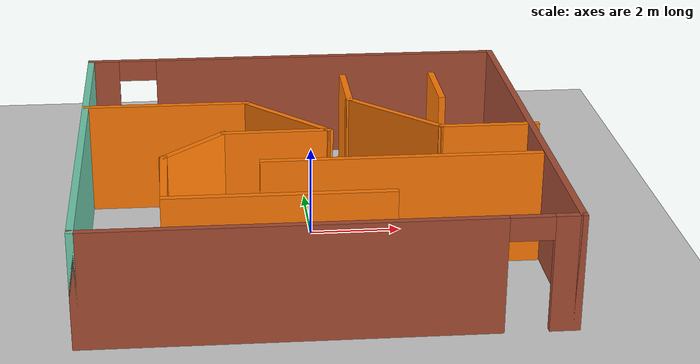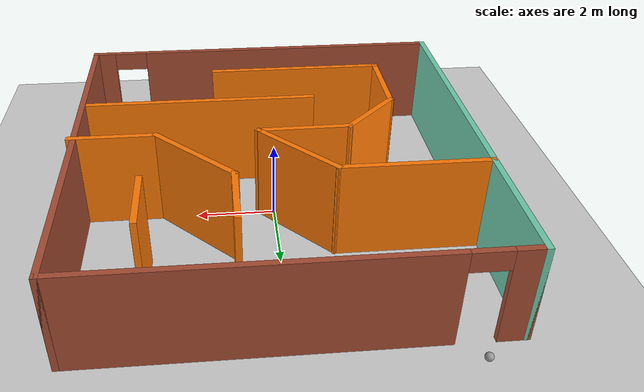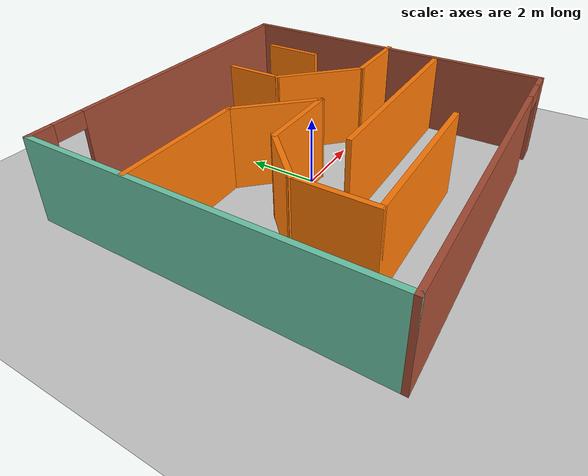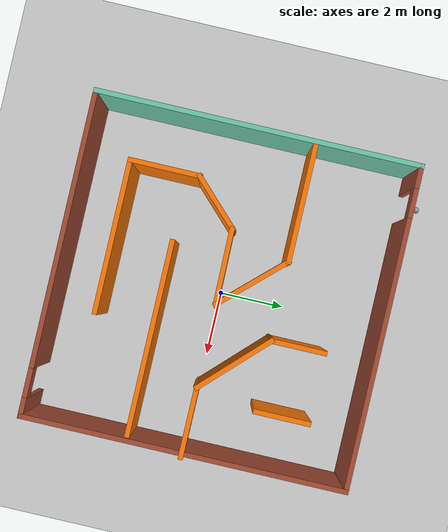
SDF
<sdf version="1.6">
 <world name="default">
  <plugin name="greetUser" filename="libgreetUser.so"/>
  <light name="sun" type="directional">
   <pose>0 0 10 0 -0 0</pose>
   <diffuse>0.8 0.8 0.8 1</diffuse>
   <specular>0.2 0.2 0.2 1</specular>
   <attenuation>
    <range>1000</range>
    <constant>0.9</constant>
    <linear>0.01</linear>
    <quadratic>0.001</quadratic>
   </attenuation>
   <direction>-0.5 0.1 -0.9</direction>
  </light>
  <model name="ground_plane">
   <static>1</static>
   <link name="link">
    <collision name="collision">
     <geometry><plane><normal>0 0 1</normal><size>100 100</size></plane></geometry>
     <surface>
      <contact><collide_bitmask>65535</collide_bitmask></contact>
      <friction><ode><mu>100</mu><mu2>50</mu2></ode></friction>
     </surface>
    </collision>
    <visual name="visual">
     <cast_shadows>0</cast_shadows>
     <geometry><plane><normal>0 0 1</normal><size>100 100</size></plane></geometry>
     <material>
      <script><uri>file://media/materials/scripts/gazebo.material</uri><name>Gazebo/Grey</name></script>
     </material>
    </visual>
   </link>
  </model>
  <gravity>0 0 -9.8</gravity>
  <magnetic_field>6e-06 2.3e-05 -4.2e-05</magnetic_field>
  <atmosphere type="adiabatic"/>
  <physics name="default_physics" default="0" type="ode">
   <max_step_size>0.001</max_step_size>
   <real_time_factor>1</real_time_factor>
   <real_time_update_rate>1000</real_time_update_rate>
  </physics>
  <scene><ambient>0.4 0.4 0.4 1</ambient><background>0.7 0.7 0.7 1</background><shadows>1</shadows></scene>
  <spherical_coordinates>
   <surface_model>EARTH_WGS84</surface_model>
   <latitude_deg>0</latitude_deg>
   <longitude_deg>0</longitude_deg>
   <elevation>0</elevation>
   <heading_deg>0</heading_deg>
  </spherical_coordinates>
  <model name="maze2">
   <link name="Wall_1">
    <collision name="Wall_1_Collision">
     <geometry><box><size>10 0.15 2.5</size></box></geometry>
     <pose>0 0 1.25 0 -0 0</pose>
    </collision>
    <visual name="Wall_1_Visual">
     <pose>0 0 1.25 0 -0 0</pose>
     <geometry><box><size>10 0.15 2.5</size></box></geometry>
     <material>
      <script><uri>file://media/materials/scripts/gazebo.material</uri><name>Gazebo/Grey</name></script>
      <ambient>0.435294 0.796078 0.67451 1</ambient>
     </material>
     <meta><layer>0</layer></meta>
    </visual>
    <pose>-4.97763 0 0 0 -0 1.5708</pose>
   </link>
   <link name="Wall_10">
    <collision name="Wall_10_Collision">
     <geometry><box><size>3.75 0.15 2.5</size></box></geometry>
     <pose>0 0 1.25 0 -0 0</pose>
    </collision>
    <visual name="Wall_10_Visual">
     <pose>0 0 1.25 0 -0 0</pose>
     <geometry><box><size>3.75 0.15 2.5</size></box></geometry>
     <material>
      <script><uri>file://media/materials/scripts/gazebo.material</uri><name>Gazebo/Grey</name></script>
      <ambient>0.996078 0.47451 0.0196078 1</ambient>
     </material>
     <meta><layer>0</layer></meta>
    </visual>
    <pose>-3.14289 1.74834 0 0 -0 0</pose>
   </link>
   <link name="Wall_11">
    <collision name="Wall_11_Collision">
     <geometry><box><size>2.64896 0.15 2.5</size></box></geometry>
     <pose>0 0 1.25 0 -0 0</pose>
    </collision>
    <visual name="Wall_11_Visual">
     <pose>0 0 1.25 0 -0 0</pose>
     <geometry><box><size>2.64896 0.15 2.5</size></box></geometry>
     <material>
      <script><uri>file://media/materials/scripts/gazebo.material</uri><name>Gazebo/Grey</name></script>
      <ambient>0.996078 0.47451 0.0196078 1</ambient>
     </material>
     <meta><layer>0</layer></meta>
    </visual>
    <pose>-0.486358 0.838638 0 0 0 -0.815498</pose>
   </link>
   <link name="Wall_12">
    <collision name="Wall_12_Collision">
     <geometry><box><size>2.39334 0.15 2.5</size></box></geometry>
     <pose>0 0 1.25 0 -0 0</pose>
    </collision>
    <visual name="Wall_12_Visual">
     <pose>0 0 1.25 0 -0 0</pose>
     <geometry><box><size>2.39334 0.15 2.5</size></box></geometry>
     <material>
      <script><uri>file://media/materials/scripts/gazebo.material</uri><name>Gazebo/Grey</name></script>
      <ambient>0.996078 0.47451 0.0196078 1</ambient>
     </material>
     <meta><layer>0</layer></meta>
    </visual>
    <pose>-0.782032 -0.082632 0 0 0 -3.13128</pose>
   </link>
   <link name="Wall_14">
    <collision name="Wall_14_Collision">
     <geometry><box><size>6 0.15 2.5</size></box></geometry>
     <pose>0 0 1.25 0 -0 0</pose>
    </collision>
    <visual name="Wall_14_Visual">
     <pose>0 0 1.25 0 -0 0</pose>
     <geometry><box><size>6 0.15 2.5</size></box></geometry>
     <material>
      <script><uri>file://media/materials/scripts/gazebo.material</uri><name>Gazebo/Grey</name></script>
      <ambient>0.996078 0.47451 0.0196078 1</ambient>
     </material>
     <meta><layer>0</layer></meta>
    </visual>
    <pose>1.78307 -1.72915 0 0 -0 0</pose>
   </link>
   <link name="Wall_16">
    <collision name="Wall_16_Collision">
     <geometry><box><size>2.75 0.15 2.5</size></box></geometry>
     <pose>0 0 1.25 0 -0 0</pose>
    </collision>
    <visual name="Wall_16_Visual">
     <pose>0 0 1.25 0 -0 0</pose>
     <geometry><box><size>2.75 0.15 2.5</size></box></geometry>
     <material>
      <script><uri>file://media/materials/scripts/gazebo.material</uri><name>Gazebo/Grey</name></script>
      <ambient>0.996078 0.47451 0.0196078 1</ambient>
     </material>
     <meta><layer>0</layer></meta>
    </visual>
    <pose>1.95839 0.869485 0 0 0 -0.785398</pose>
   </link>
   <link name="Wall_17">
    <collision name="Wall_17_Collision">
     <geometry><box><size>2.25 0.15 2.5</size></box></geometry>
     <pose>0 0 1.25 0 -0 0</pose>
    </collision>
    <visual name="Wall_17_Visual">
     <pose>0 0 1.25 0 -0 0</pose>
     <geometry><box><size>2.25 0.15 2.5</size></box></geometry>
     <material>
      <script><uri>file://media/materials/scripts/gazebo.material</uri><name>Gazebo/Grey</name></script>
      <ambient>0.996078 0.47451 0.0196078 1</ambient>
     </material>
     <meta><layer>0</layer></meta>
    </visual>
    <pose>3.92763 -0.049754 0 0 -0 0</pose>
   </link>
   <link name="Wall_19">
    <collision name="Wall_19_Collision">
     <geometry><box><size>1.75 0.15 2.5</size></box></geometry>
     <pose>0 0 1.25 0 -0 0</pose>
    </collision>
    <visual name="Wall_19_Visual">
     <pose>0 0 1.25 0 -0 0</pose>
     <geometry><box><size>1.75 0.15 2.5</size></box></geometry>
     <material>
      <script><uri>file://media/materials/scripts/gazebo.material</uri><name>Gazebo/Grey</name></script>
      <ambient>0.996078 0.47451 0.0196078 1</ambient>
     </material>
     <meta><layer>0</layer></meta>
    </visual>
    <pose>1.03915 2.58872 0 0 -0 1.5708</pose>
   </link>
   <link name="Wall_22">
    <collision name="Wall_22_Collision">
     <geometry><box><size>1.75 0.15 2.5</size></box></geometry>
     <pose>0 0 1.25 0 -0 0</pose>
    </collision>
    <visual name="Wall_22_Visual">
     <pose>0 0 1.25 0 -0 0</pose>
     <geometry><box><size>1.75 0.15 2.5</size></box></geometry>
     <material>
      <script><uri>file://media/materials/scripts/gazebo.material</uri><name>Gazebo/Grey</name></script>
      <ambient>0.996078 0.47451 0.0196078 1</ambient>
     </material>
     <meta><layer>0</layer></meta>
    </visual>
    <pose>3.17366 2.59721 0 0 0 -1.5708</pose>
   </link>
   <link name="Wall_24">
    <collision name="Wall_24_Collision">
     <geometry><box><size>2 0.15 2.5</size></box></geometry>
     <pose>0 0 1.25 0 -0 0</pose>
    </collision>
    <visual name="Wall_24_Visual">
     <pose>0 0 1.25 0 -0 0</pose>
     <geometry><box><size>2 0.15 2.5</size></box></geometry>
     <material>
      <script><uri>file://media/materials/scripts/gazebo.material</uri><name>Gazebo/Grey</name></script>
      <ambient>0.996078 0.47451 0.0196078 1</ambient>
     </material>
     <meta><layer>0</layer></meta>
    </visual>
    <pose>-2.55772 -0.725141 0 0 0 -2.35619</pose>
   </link>
   <link name="Wall_27">
    <collision name="Wall_27_Collision">
     <geometry><box><size>2.25 0.15 2.5</size></box></geometry>
     <pose>0 0 1.25 0 -0 0</pose>
    </collision>
    <visual name="Wall_27_Visual">
     <pose>0 0 1.25 0 -0 0</pose>
     <geometry><box><size>2.25 0.15 2.5</size></box></geometry>
     <material>
      <script><uri>file://media/materials/scripts/gazebo.material</uri><name>Gazebo/Grey</name></script>
      <ambient>0.996078 0.47451 0.0196078 1</ambient>
     </material>
     <meta><layer>0</layer></meta>
    </visual>
    <pose>-3.21179 -2.42921 0 0 0 -1.5708</pose>
   </link>
   <link name="Wall_28">
    <collision name="Wall_28_Collision">
     <geometry><box><size>4.75 0.15 2.5</size></box></geometry>
     <pose>0 0 1.25 0 -0 0</pose>
    </collision>
    <visual name="Wall_28_Visual">
     <pose>0 0 1.25 0 -0 0</pose>
     <geometry><box><size>4.75 0.15 2.5</size></box></geometry>
     <material>
      <script><uri>file://media/materials/scripts/gazebo.material</uri><name>Gazebo/Grey</name></script>
      <ambient>0.996078 0.47451 0.0196078 1</ambient>
     </material>
     <meta><layer>0</layer></meta>
    </visual>
    <pose>-0.91179 -3.47921 0 0 -0 0</pose>
   </link>
   <link name="Wall_5">
    <pose>-0.05263 -4.925 0 0 -0 0</pose>
    <visual name="Wall_5_Visual_0">
     <pose>-0.765135 0 1.25 0 -0 0</pose>
     <geometry><box><size>8.46973 0.15 2.5</size></box></geometry>
     <material>
      <script><uri>file://media/materials/scripts/gazebo.material</uri><name>Gazebo/Bricks</name></script>
      <ambient>0.996078 0.47451 0.0196078 1</ambient>
     </material>
     <meta><layer>0</layer></meta>
    </visual>
    <collision name="Wall_5_Collision_0">
     <geometry><box><size>8.46973 0.15 2.5</size></box></geometry>
     <pose>-0.765135 0 1.25 0 -0 0</pose>
    </collision>
    <visual name="Wall_5_Visual_1">
     <pose>4.68487 0 1.25 0 -0 0</pose>
     <geometry><box><size>0.630269 0.15 2.5</size></box></geometry>
     <material>
      <script><uri>file://media/materials/scripts/gazebo.material</uri><name>Gazebo/Bricks</name></script>
      <ambient>0.996078 0.47451 0.0196078 1</ambient>
     </material>
     <meta><layer>0</layer></meta>
    </visual>
    <collision name="Wall_5_Collision_1">
     <geometry><box><size>0.630269 0.15 2.5</size></box></geometry>
     <pose>4.68487 0 1.25 0 -0 0</pose>
    </collision>
    <visual name="Wall_5_Visual_2">
     <pose>3.91973 0 2.25 0 -0 0</pose>
     <geometry><box><size>0.9 0.15 0.5</size></box></geometry>
     <material>
      <script><uri>file://media/materials/scripts/gazebo.material</uri><name>Gazebo/Bricks</name></script>
      <ambient>0.996078 0.47451 0.0196078 1</ambient>
     </material>
     <meta><layer>0</layer></meta>
    </visual>
    <collision name="Wall_5_Collision_2">
     <geometry><box><size>0.9 0.15 0.5</size></box></geometry>
     <pose>3.91973 0 2.25 0 -0 0</pose>
    </collision>
   </link>
   <link name="Wall_6">
    <collision name="Wall_6_Collision">
     <geometry><box><size>10 0.15 2.5</size></box></geometry>
     <pose>0 0 1.25 0 -0 0</pose>
    </collision>
    <visual name="Wall_6_Visual">
     <pose>0 0 1.25 0 -0 0</pose>
     <geometry><box><size>10 0.15 2.5</size></box></geometry>
     <material>
      <script><uri>file://media/materials/scripts/gazebo.material</uri><name>Gazebo/Bricks</name></script>
      <ambient>0.435294 0.796078 0.67451 1</ambient>
     </material>
     <meta><layer>0</layer></meta>
    </visual>
    <pose>4.87237 0 0 0 -0 1.5708</pose>
   </link>
   <link name="Wall_8">
    <pose>-0.05263 4.925 0 0 -0 0</pose>
    <visual name="Wall_8_Visual_0">
     <pose>-4.62594 0 1.25 0 -0 0</pose>
     <geometry><box><size>0.748123 0.15 2.5</size></box></geometry>
     <material>
      <script><uri>file://media/materials/scripts/gazebo.material</uri><name>Gazebo/Bricks</name></script>
      <ambient>0.996078 0.47451 0.0196078 1</ambient>
     </material>
     <meta><layer>0</layer></meta>
    </visual>
    <collision name="Wall_8_Collision_0">
     <geometry><box><size>0.748123 0.15 2.5</size></box></geometry>
     <pose>-4.62594 0 1.25 0 -0 0</pose>
    </collision>
    <visual name="Wall_8_Visual_1">
     <pose>0.824061 0 1.25 0 -0 0</pose>
     <geometry><box><size>8.35188 0.15 2.5</size></box></geometry>
     <material>
      <script><uri>file://media/materials/scripts/gazebo.material</uri><name>Gazebo/Bricks</name></script>
      <ambient>0.996078 0.47451 0.0196078 1</ambient>
     </material>
     <meta><layer>0</layer></meta>
    </visual>
    <collision name="Wall_8_Collision_1">
     <geometry><box><size>8.35188 0.15 2.5</size></box></geometry>
     <pose>0.824061 0 1.25 0 -0 0</pose>
    </collision>
    <visual name="Wall_8_Visual_2">
     <pose>-3.80188 0 2.25 0 -0 0</pose>
     <geometry><box><size>0.9 0.15 0.5</size></box></geometry>
     <material>
      <script><uri>file://media/materials/scripts/gazebo.material</uri><name>Gazebo/Bricks</name></script>
      <ambient>0.996078 0.47451 0.0196078 1</ambient>
     </material>
     <meta><layer>0</layer></meta>
    </visual>
    <collision name="Wall_8_Collision_2">
     <geometry><box><size>0.9 0.15 0.5</size></box></geometry>
     <pose>-3.80188 0 2.25 0 -0 0</pose>
    </collision>
   </link>
   <static>1</static>
  </model>
  <model name="my_ball">
   <link name="link_0">
    <inertial>
     <mass>1</mass>
     <inertia><ixx>0.1</ixx><ixy>0</ixy><ixz>0</ixz><iyy>0.1</iyy><iyz>0</iyz><izz>0.1</izz></inertia>
    </inertial>
    <visual name="visual">
     <geometry><sphere><radius>0.1</radius></sphere></geometry>
     <material>
      <lighting>1</lighting>
      <script><uri>file://media/materials/scripts/gazebo.material</uri><name>Gazebo/Grey</name></script>
      <shader type="pixel"><normal_map>__default__</normal_map></shader>
      <ambient>1 1 1 1</ambient>
      <diffuse>1 1 1 1</diffuse>
      <specular>1 1 1 1</specular>
      <emissive>1 1 1 1</emissive>
     </material>
    </visual>
    <collision name="collision">
     <geometry><sphere><radius>0.1</radius></sphere></geometry>
     <surface>
      <friction>
       <ode><mu>1</mu><mu2>1</mu2><fdir1>0 0 0</fdir1><slip1>0</slip1><slip2>0</slip2></ode>
       <torsional>
        <coefficient>1</coefficient>
        <patch_radius>0</patch_radius>
        <surface_radius>0</surface_radius>
        <use_patch_radius>1</use_patch_radius>
        <ode><slip>0</slip></ode>
       </torsional>
      </friction>
      <bounce><restitution_coefficient>0</restitution_coefficient><threshold>1e+06</threshold></bounce>
      <contact>
       <collide_without_contact>0</collide_without_contact>
       <collide_without_contact_bitmask>1</collide_without_contact_bitmask>
       <collide_bitmask>1</collide_bitmask>
       <ode>
        <soft_cfm>0</soft_cfm>
        <soft_erp>0.2</soft_erp>
        <kp>1e+13</kp>
        <kd>1</kd>
        <max_vel>0.01</max_vel>
        <min_depth>0</min_depth>
       </ode>
       <bullet>
        <split_impulse>1</split_impulse>
        <split_impulse_penetration_threshold>-0.01</split_impulse_penetration_threshold>
        <soft_cfm>0</soft_cfm>
        <soft_erp>0.2</soft_erp>
        <kp>1e+13</kp>
        <kd>1</kd>
       </bullet>
      </contact>
     </surface>
    </collision>
   </link>
   <static>0</static>
   <pose>-3.98339 5.47242 0.1 0 -0 0</pose>
  </model>
 </world>
</sdf>
